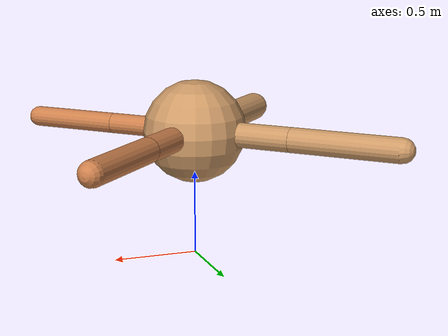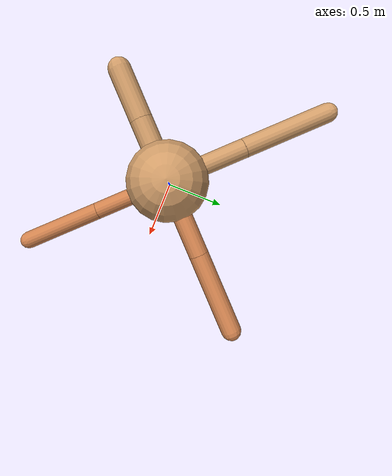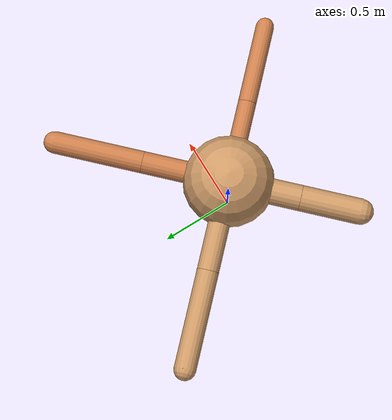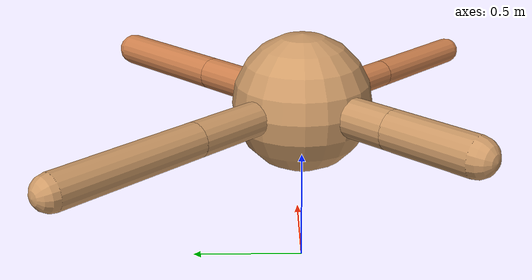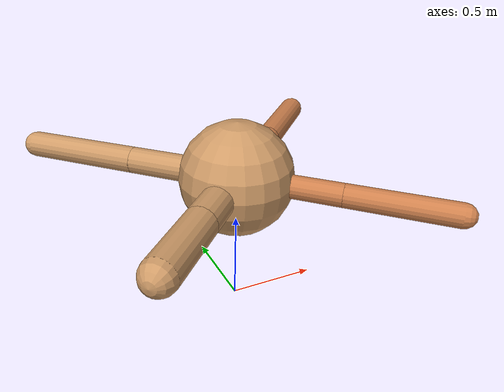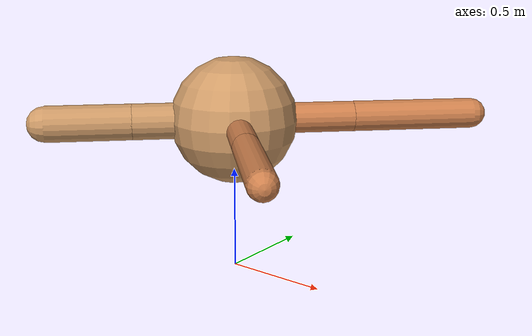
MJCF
<?xml version="1.0" ?>
<mujoco model="ant">

	<compiler angle="degree" coordinate="local" inertiafromgeom="true"/>

	<option integrator="RK4" timestep="0.01"/>

	<custom>

		<numeric data="0.0 0.0 0.55 1.0 0.0 0.0 0.0 0.0 1.0 0.0 -1.0 0.0 -1.0 0.0 1.0" name="init_qpos"/>

	</custom>

	<default>

		<joint armature="1" damping="1" limited="true"/>

		<geom conaffinity="0" condim="3" density="5.0" friction="1.5 0.1 0.1" margin="0.01" rgba="0.8 0.6 0.4 1"/>

	</default>

	<worldbody>

		<body name="torso" pos="0 0 0.75">

			<geom name="torso_geom" pos="0 0 0" size="0.30515076029615507" type="sphere"/>

			<!--joint armature="0" damping="0" limited="false" margin="0.01" name="root" pos="0 0 0" type="free"/-->

			<body name="front_left_leg" pos="0 0 0">

				<geom fromto="0 0 0 0.2 0.2 0" name="aux_1_geom" size="0.07380597490899883" type="capsule" rgba=".8 .5 .3 1"/>

				<body name="aux_1" pos="0.2 0.2 0">

					<joint axis="0 0 1" name="hip_1" pos="0.0 0.0 0.0" range="-40 40" type="hinge"/>

					<geom fromto="0 0 0 0.21178958304219184 0.21178958304219184 0" name="left_leg_geom" size="0.07380597490899883" type="capsule" rgba=".8 .5 .3 1"/>

					<body pos="0.21178958304219184 0.21178958304219184 0" name="front_left_foot">

						<joint axis="-1 1 0" name="ankle_1" pos="0.0 0.0 0.0" range="30 100" type="hinge"/>

						<geom fromto="0 0 0 0.4235791660843837 0.4235791660843837 0" name="left_ankle_geom" size="0.07380597490899883" type="capsule" rgba=".8 .5 .3 1"/>

					</body>

				</body>

			</body>

			<body name="front_right_leg" pos="0 0 0">

				<geom fromto="0 0 0 -0.2 0.2 0" name="aux_2_geom" size="0.07354824451100102" type="capsule"/>

				<body name="aux_2" pos="-0.2 0.2 0">

					<joint axis="0 0 1" name="hip_2" pos="0.0 0.0 0.0" range="-40 40" type="hinge"/>

					<geom fromto="0 0 0 -0.23128380411203447 0.23128380411203447 0" name="right_leg_geom" size="0.07354824451100102" type="capsule"/>

					<body pos="-0.23128380411203447 0.23128380411203447 0" name="front_right_foot">

						<joint axis="1 1 0" name="ankle_2" pos="0.0 0.0 0.0" range="-100 -30" type="hinge"/>

						<geom fromto="0 0 0 -0.46256760822406895 0.46256760822406895 0" name="right_ankle_geom" size="0.07354824451100102" type="capsule"/>

					</body>

				</body>

			</body>

			<body name="left_back_leg" pos="0 0 0">

				<geom fromto="0 0 0 -0.2 -0.2 0" name="aux_3_geom" size="0.08658319521025667" type="capsule"/>

				<body name="aux_3" pos="-0.2 -0.2 0">

					<joint axis="0 0 1" name="hip_3" pos="0.0 0.0 0.0" range="-40 40" type="hinge"/>

					<geom fromto="0 0 0 -0.14241801652708716 -0.14241801652708716 0" name="back_leg_geom" size="0.08658319521025667" type="capsule"/>

					<body pos="-0.14241801652708716 -0.14241801652708716 0" name="left_back_foot">

						<joint axis="-1 1 0" name="ankle_3" pos="0.0 0.0 0.0" range="-100 -30" type="hinge"/>

						<geom fromto="0 0 0 -0.2848360330541743 -0.2848360330541743 0" name="third_ankle_geom" size="0.08658319521025667" type="capsule"/>

					</body>

				</body>

			</body>

			<body name="right_back_leg" pos="0 0 0">

				<geom fromto="0 0 0 0.2 -0.2 0" name="aux_4_geom" size="0.06129513385368042" type="capsule" rgba=".8 .5 .3 1"/>

				<body name="aux_4" pos="0.2 -0.2 0">

					<joint axis="0 0 1" name="hip_4" pos="0.0 0.0 0.0" range="-40 40" type="hinge"/>

					<geom fromto="0 0 0 0.1901206219800979 -0.1901206219800979 0" name="rightback_leg_geom" size="0.06129513385368042" type="capsule" rgba=".8 .5 .3 1"/>

					<body pos="0.1901206219800979 -0.1901206219800979 0" name="right_back_foot">

						<joint axis="1 1 0" name="ankle_4" pos="0.0 0.0 0.0" range="30 100" type="hinge"/>

						<geom fromto="0 0 0 0.3802412439601958 -0.3802412439601958 0" name="fourth_ankle_geom" size="0.06129513385368042" type="capsule" rgba=".8 .5 .3 1"/>

					</body>

				</body>

			</body>

		</body>

	</worldbody>

	<actuator>

		<motor ctrllimited="true" ctrlrange="-1.0 1.0" joint="hip_4" gear="150"/>

		<motor ctrllimited="true" ctrlrange="-1.0 1.0" joint="ankle_4" gear="150"/>

		<motor ctrllimited="true" ctrlrange="-1.0 1.0" joint="hip_1" gear="150"/>

		<motor ctrllimited="true" ctrlrange="-1.0 1.0" joint="ankle_1" gear="150"/>

		<motor ctrllimited="true" ctrlrange="-1.0 1.0" joint="hip_2" gear="150"/>

		<motor ctrllimited="true" ctrlrange="-1.0 1.0" joint="ankle_2" gear="150"/>

		<motor ctrllimited="true" ctrlrange="-1.0 1.0" joint="hip_3" gear="150"/>

		<motor ctrllimited="true" ctrlrange="-1.0 1.0" joint="ankle_3" gear="150"/>

	</actuator>

</mujoco>
